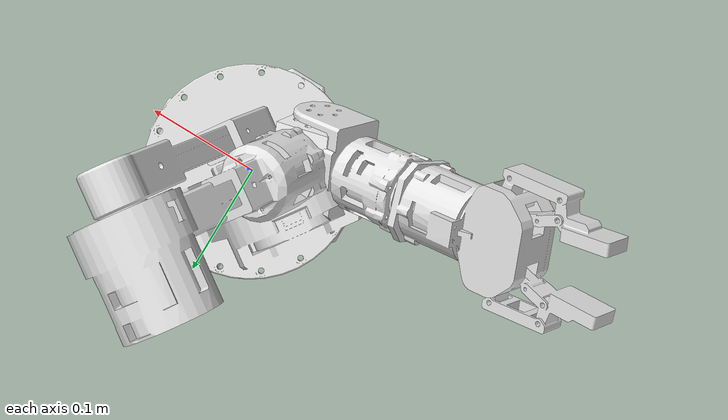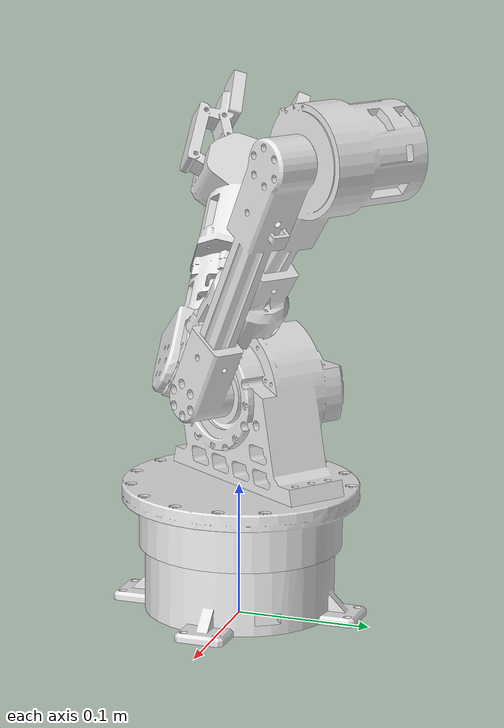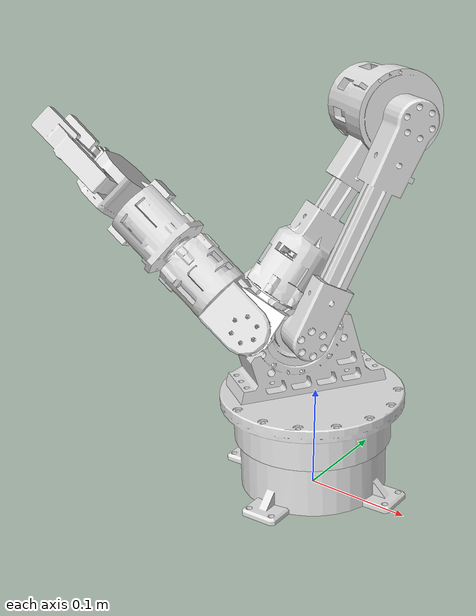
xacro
<?xml version="1.0"?>
<robot xmlns:xacro="http://www.ros.org/wiki/xacro" name="pallet_gripper">
    <xacro:arg name="initial_positions_file" default="initial_positions.yaml" />

    <!-- Import pallet_gripper urdf file -->
    <xacro:include filename="$(find pallet_gripper)/urdf/pallet_gripper.urdf" />

    <!-- Import control_xacro -->
    <xacro:include filename="pallet_gripper.ros2_control.xacro" />

    <xacro:pallet_gripper_ros2_control name="FakeSystem" initial_positions_file="$(arg initial_positions_file)"/>

</robot>

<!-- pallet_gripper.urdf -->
<robot name="pallet_gripper">
  <!-- Native ROS Z-up coordinates; converted from the SolidWorks Y-up export. -->
  <link name="base_footprint"/>
  <joint name="base_footprint_joint" type="fixed">
    <!-- Raise the lowest point of the normalized base mesh to z=0. -->
    <origin xyz="0 0 0.0042247553356" rpy="0 0 0"/>
    <parent link="base_footprint"/>
    <child link="base_link"/>
  </joint>
  <link name="base_link">
    <inertial>
      <origin xyz="-0.0017738 -5.75909999913e-08 0.039216" rpy="0 0 0"/>
      <mass value="0.76777"/>
      <inertia ixx="0.0012084" ixy="6.2774e-06" ixz="-4.267e-05" iyy="0.0012021" iyz="2.8312e-07" izz="0.0021498"/>
    </inertial>
    <visual>
      <origin xyz="0 0 0" rpy="0 0 0"/>
      <geometry>
        <mesh filename="package://pallet_gripper/meshes/base_link.STL"/>
      </geometry>
      <material name="">
        <color rgba="0.89412 0.89412 0.89412 1"/>
      </material>
    </visual>
    <collision>
      <origin xyz="0 0 0" rpy="0 0 0"/>
      <geometry>
        <mesh filename="package://pallet_gripper/meshes/collision/base_link_collision.obj"/>
      </geometry>
    </collision>
  </link>
  <link name="J1">
    <inertial>
      <origin xyz="0.0091039 -0.0063557 0.072516" rpy="0 0 0"/>
      <mass value="0.90348"/>
      <inertia ixx="0.0013882" ixy="-0.00020438" ixz="-4.7994e-05" iyy="0.0016343" iyz="-1.6853e-05" izz="0.002157"/>
    </inertial>
    <visual>
      <origin xyz="0 0 0" rpy="0 0 0"/>
      <geometry>
        <mesh filename="package://pallet_gripper/meshes/no.1.STL"/>
      </geometry>
      <material name="">
        <color rgba="0.89412 0.89412 0.89412 1"/>
      </material>
    </visual>
    <collision>
      <origin xyz="0 0 0" rpy="0 0 0"/>
      <geometry>
        <mesh filename="package://pallet_gripper/meshes/collision/no.1_collision.obj"/>
      </geometry>
    </collision>
  </link>
  <joint name="J1" type="revolute">
    <origin xyz="-0.0019451 0 0.043004" rpy="0.0192105439766 0.0409123320909 -2.70258976292"/>
    <parent link="base_link"/>
    <child link="J1"/>
    <axis xyz="0 0 1"/>
    <limit lower="-3.14" upper="3.14" effort="14" velocity="6.28"/>
  </joint>
  <link name="J2">
    <inertial>
      <origin xyz="-0.12461 -0.022348 2.4879e-05" rpy="0 0 0"/>
      <mass value="0.19043"/>
      <inertia ixx="6.2071e-05" ixy="7.1942e-06" ixz="0" iyy="0.00017425" iyz="1.55550000001e-09" izz="0.00020011"/>
    </inertial>
    <visual>
      <origin xyz="0 0 0" rpy="0 0 0"/>
      <geometry>
        <mesh filename="package://pallet_gripper/meshes/no.2.STL"/>
      </geometry>
      <material name="">
        <color rgba="0.89412 0.89412 0.89412 1"/>
      </material>
    </visual>
    <collision>
      <origin xyz="0 0 0" rpy="0 0 0"/>
      <geometry>
        <mesh filename="package://pallet_gripper/meshes/collision/no.2_collision.obj"/>
      </geometry>
    </collision>
  </link>
  <joint name="J2" type="revolute">
    <origin xyz="0.013308 0.0076835 0.11835" rpy="3.14158980267 1.08661880453 0.523588156725"/>
    <parent link="J1"/>
    <child link="J2"/>
    <axis xyz="0 -1 0"/>
    <limit lower="-3.14" upper="3.14" effort="36" velocity="6.28"/>
  </joint>
  <link name="J3">
    <inertial>
      <origin xyz="-0.020747 -0.043723 -2.4696e-05" rpy="0 0 0"/>
      <mass value="0.46509"/>
      <inertia ixx="0.00038727" ixy="1.9311e-05" ixz="3.4702e-08" iyy="0.00027261" iyz="3.8077e-07" izz="0.00035543"/>
    </inertial>
    <visual>
      <origin xyz="0 0 0" rpy="0 0 0"/>
      <geometry>
        <mesh filename="package://pallet_gripper/meshes/no.3.STL"/>
      </geometry>
      <material name="">
        <color rgba="0.89412 0.89412 0.89412 1"/>
      </material>
    </visual>
    <collision>
      <origin xyz="0 0 0" rpy="0 0 0"/>
      <geometry>
        <mesh filename="package://pallet_gripper/meshes/collision/no.3_collision.obj"/>
      </geometry>
    </collision>
  </link>
  <joint name="J3" type="revolute">
    <origin xyz="-0.2135 0 0" rpy="2.986 0 -1.5708"/>
    <parent link="J2"/>
    <child link="J3"/>
    <axis xyz="1 0 0"/>
    <limit lower="-3.14" upper="3.14" effort="14" velocity="6.28"/>
  </joint>
  <link name="J4">
    <inertial>
      <origin xyz="-0.001517 -0.053987 1.5799e-05" rpy="0 0 0"/>
      <mass value="0.058621"/>
      <inertia ixx="2.2241e-05" ixy="-2.0198e-06" ixz="-2.0556e-08" iyy="2.2662e-05" iyz="2.4342e-09" izz="2.5188e-05"/>
    </inertial>
    <visual>
      <origin xyz="0 0 0" rpy="0 0 0"/>
      <geometry>
        <mesh filename="package://pallet_gripper/meshes/no.4.STL"/>
      </geometry>
      <material name="">
        <color rgba="1 1 1 1"/>
      </material>
    </visual>
    <collision>
      <origin xyz="0 0 0" rpy="0 0 0"/>
      <geometry>
        <mesh filename="package://pallet_gripper/meshes/collision/no.4_collision.obj"/>
      </geometry>
    </collision>
  </link>
  <joint name="J4" type="revolute">
    <origin xyz="-0.0079993 -0.16723 -0.00015" rpy="0 -0.61608 0"/>
    <parent link="J3"/>
    <child link="J4"/>
    <axis xyz="0 -1 0"/>
    <limit lower="-3.14" upper="3.14" effort="5.5" velocity="6.28"/>
  </joint>
  <link name="J5">
    <inertial>
      <origin xyz="9.2524e-05 0.04622 -1.4413e-05" rpy="0 0 0"/>
      <mass value="0.14465"/>
      <inertia ixx="6.2896e-05" ixy="-8.708e-06" ixz="2.8786e-07" iyy="7.3519e-05" iyz="4.1718e-08" izz="7.0929e-05"/>
    </inertial>
    <visual>
      <origin xyz="0 0 0" rpy="0 0 0"/>
      <geometry>
        <mesh filename="package://pallet_gripper/meshes/no.5.STL"/>
      </geometry>
      <material name="">
        <color rgba="0.89412 0.89412 0.89412 1"/>
      </material>
    </visual>
    <collision>
      <origin xyz="0 0 0" rpy="0 0 0"/>
      <geometry>
        <mesh filename="package://pallet_gripper/meshes/collision/no.5_collision.obj"/>
      </geometry>
    </collision>
  </link>
  <joint name="J5" type="revolute">
    <origin xyz="0 -0.065768 0" rpy="1.78369265359 7.34641020683e-06 3.14159265359"/>
    <parent link="J4"/>
    <child link="J5"/>
    <axis xyz="1 0 0"/>
    <limit lower="-3.14" upper="3.14" effort="5.5" velocity="6.28"/>
  </joint>
  <link name="J6">
    <inertial>
      <origin xyz="-5.1051e-06 0.00012739 -0.0028486" rpy="0 0 0"/>
      <mass value="0.16095"/>
      <inertia ixx="8.0162e-05" ixy="-7.8838e-06" ixz="5.4833e-07" iyy="6.4407e-05" iyz="3.2626e-07" izz="8.6397e-05"/>
    </inertial>
    <visual>
      <origin xyz="0 0 0" rpy="0 0 0"/>
      <geometry>
        <mesh filename="package://pallet_gripper/meshes/gripper.STL"/>
      </geometry>
      <material name="">
        <color rgba="0.89412 0.89412 0.89412 1"/>
      </material>
    </visual>
    <collision>
      <origin xyz="0 0 0" rpy="0 0 0"/>
      <geometry>
        <mesh filename="package://pallet_gripper/meshes/collision/gripper_collision.obj"/>
      </geometry>
    </collision>
  </link>
  <joint name="J6" type="revolute">
    <origin xyz="0.00205 0.15365 0" rpy="1.57079265359 1.19689265359 -3.14159265359"/>
    <parent link="J5"/>
    <child link="J6"/>
    <axis xyz="0 0 1"/>
    <limit lower="-3.14" upper="3.14" effort="10" velocity="3.14"/>
  </joint>
  <link name="J7">
    <inertial>
      <origin xyz="0 0 0.008" rpy="0 0 0"/>
      <mass value="0.0028394"/>
      <inertia ixx="1.3317e-07" ixy="0" ixz="0" iyy="1.2761e-07" iyz="0" izz="1.4347e-07"/>
    </inertial>
    <visual>
      <origin xyz="0 0 0" rpy="0 0 0"/>
      <geometry>
        <mesh filename="package://pallet_gripper/meshes/move_gripper.STL"/>
      </geometry>
      <material name="">
        <color rgba="0.89412 0.89412 0.89412 1"/>
      </material>
    </visual>
    <collision>
      <origin xyz="0 0 0" rpy="0 0 0"/>
      <geometry>
        <mesh filename="package://pallet_gripper/meshes/collision/move_gripper_collision.obj"/>
      </geometry>
    </collision>
  </link>
  <joint name="J7" type="fixed">
    <origin xyz="0 0 0.029921" rpy="0 0 1.1781"/>
    <parent link="J6"/>
    <child link="J7"/>
  </joint>
  <!--
    TCP at the midpoint of the two zero-position fingertip endpoints.
    J7 +Z is the outward approach direction through the jaw center.
  -->
  <link name="tcp"/>
  <joint name="tcp_joint" type="fixed">
    <origin xyz="0 0 0.094545039" rpy="0 0 0"/>
    <parent link="J7"/>
    <child link="tcp"/>
  </joint>
  <link name="J8">
    <inertial>
      <origin xyz="-0.033504 0.0082666 -0.029535" rpy="0 0 0"/>
      <mass value="0.03017"/>
      <inertia ixx="2.504e-06" ixy="-6.2888e-08" ixz="-1.5917e-07" iyy="5.8268e-06" iyz="-2.842e-08" izz="5.4734e-06"/>
    </inertial>
    <visual>
      <origin xyz="0 0 0" rpy="0 0 0"/>
      <geometry>
        <mesh filename="package://pallet_gripper/meshes/gripper_r.STL"/>
      </geometry>
      <material name="">
        <color rgba="0.89412 0.89412 0.89412 1"/>
      </material>
    </visual>
    <collision>
      <origin xyz="0 0 0" rpy="0 0 0"/>
      <geometry>
        <mesh filename="package://pallet_gripper/meshes/collision/gripper_r_collision.obj"/>
      </geometry>
    </collision>
  </link>
  <joint name="J8" type="revolute">
    <origin xyz="-0.007486 -0.0082 0.0031518" rpy="-3.14159265359 1.39629265359 -3.14159265359"/>
    <parent link="J7"/>
    <child link="J8"/>
    <axis xyz="0 1 0"/>
    <limit lower="0" upper="0.103" effort="10" velocity="1.0"/>
  </joint>
  <link name="J9">
    <inertial>
      <origin xyz="-0.033445 0.0082666 0.029588" rpy="0 0 0"/>
      <mass value="0.03017"/>
      <inertia ixx="2.5076e-06" ixy="-6.2857e-08" ixz="1.4934e-07" iyy="5.8268e-06" iyz="2.8537e-08" izz="5.4698e-06"/>
    </inertial>
    <visual>
      <origin xyz="0 0 0" rpy="0 0 0"/>
      <geometry>
        <mesh filename="package://pallet_gripper/meshes/gripper_l.STL"/>
      </geometry>
      <material name="">
        <color rgba="0.89412 0.89412 0.89412 1"/>
      </material>
    </visual>
    <collision>
      <origin xyz="0 0 0" rpy="0 0 0"/>
      <geometry>
        <mesh filename="package://pallet_gripper/meshes/collision/gripper_l_collision.obj"/>
      </geometry>
    </collision>
  </link>
  <joint name="J9" type="revolute">
    <origin xyz="0.007486 -0.0082 0.0031518" rpy="0 1.3963 0"/>
    <parent link="J7"/>
    <child link="J9"/>
    <axis xyz="0 1 0"/>
    <limit lower="-0.103" upper="0" effort="10" velocity="1.0"/>
    <mimic joint="J8" multiplier="-1" offset="0"/>
  </joint>
</robot>
